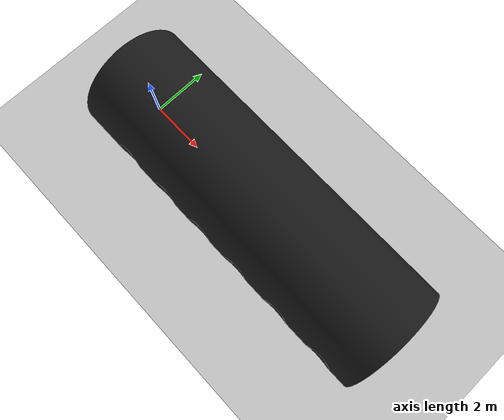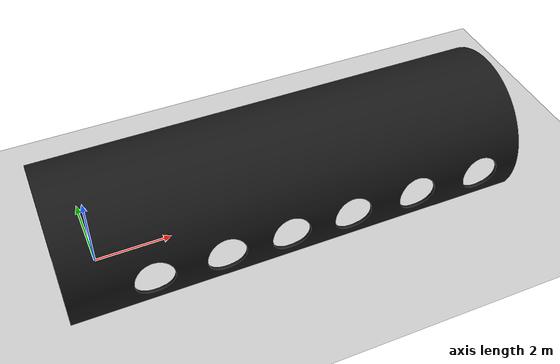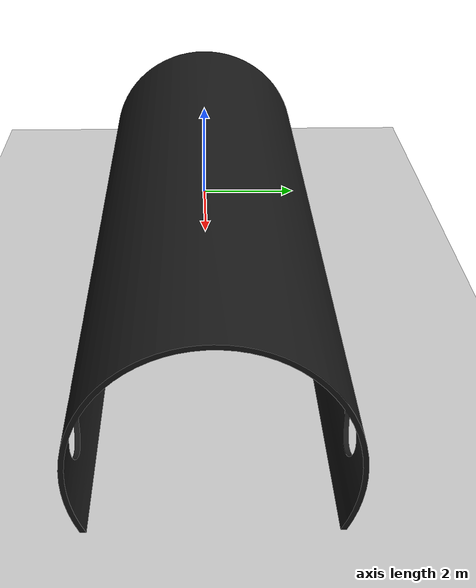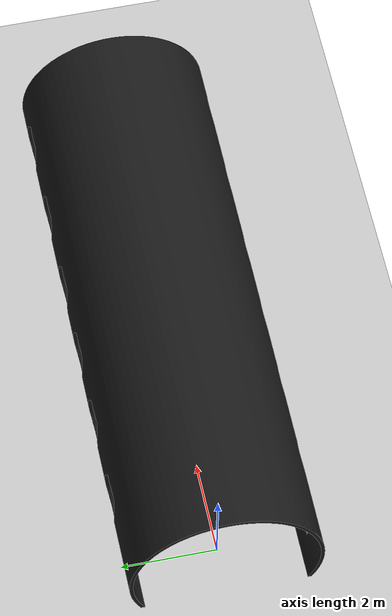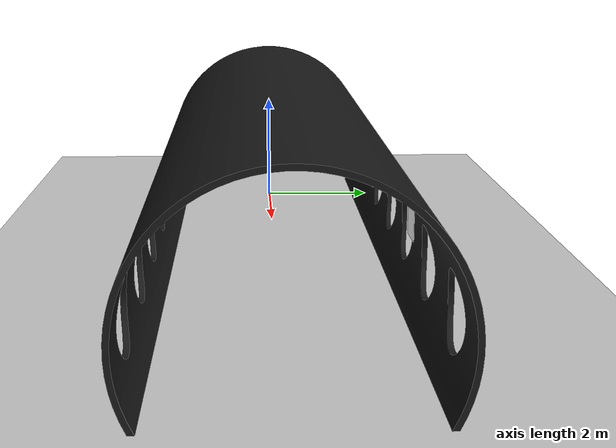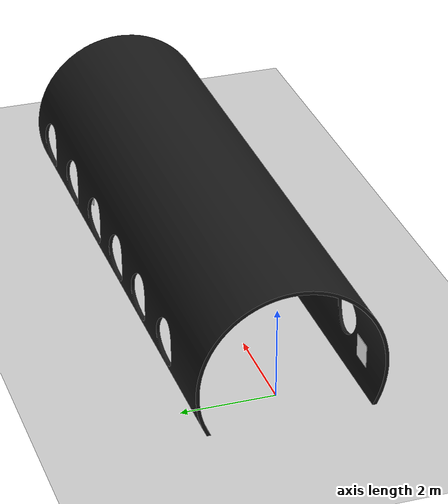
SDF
<?xml version="1.0" ?>

<sdf version="1.6">
  <world name="empty">
    <physics name="1ms" type="ignored">
      <max_step_size>0.001</max_step_size>
      <real_time_factor>1.0</real_time_factor>
    </physics>
    <plugin
      filename="gz-sim-physics-system"
      name="gz::sim::systems::Physics">
    </plugin>
    <plugin
      filename="gz-sim-user-commands-system"
      name="gz::sim::systems::UserCommands">
    </plugin>
    <plugin
      filename="gz-sim-scene-broadcaster-system"
      name="gz::sim::systems::SceneBroadcaster">
    </plugin>
    <plugin
      filename="gz-sim-contact-system"
      name="gz::sim::systems::Contact">
    </plugin>

    <plugin
      filename="gz-sim-sensors-system"
      name="gz::sim::systems::Sensors">
      <render_engine>ogre2</render_engine>
    </plugin>
    <plugin
      filename="gz-sim-imu-system"
      name="gz::sim::systems::Imu">
    </plugin>
    <plugin
      filename="gz-sim-navsat-system"
      name="gz::sim::systems::NavSat">
    </plugin>
    <!-- Set the coordinates for the world origin -->
    <spherical_coordinates>
      <surface_model>EARTH_WGS84</surface_model>
      <world_frame_orientation>ENU</world_frame_orientation>
      <latitude_deg>47.478950</latitude_deg>
      <longitude_deg>19.057785</longitude_deg>
      <elevation>0</elevation>
      <heading_deg>0</heading_deg>
    </spherical_coordinates>

    <light type="directional" name="sun">
      <cast_shadows>false</cast_shadows>
      <pose>0 0 10 0 0 0</pose>
      <diffuse>0.8 0.8 0.8 1</diffuse>
      <specular>0.2 0.2 0.2 1</specular>
      <attenuation>
        <range>1000</range>
        <constant>0.9</constant>
        <linear>0.01</linear>
        <quadratic>0.001</quadratic>
      </attenuation>
      <direction>-0.5 0.1 -0.9</direction>
    </light>

    <gravity>0 0 -9.8000000000000007</gravity>
    <magnetic_field>5.5644999999999998e-06 2.2875799999999999e-05 -4.2388400000000002e-05</magnetic_field>
    <atmosphere type='adiabatic'/>
    <scene>
      <ambient>0.400000006 0.400000006 0.400000006 1</ambient>
      <background>0.699999988 0.699999988 0.699999988 1</background>
      <shadows>true</shadows>
    </scene>

    <model name="ground_plane">
      <static>true</static>
      <link name="link">
        <collision name="collision">
          <geometry>
            <plane>
              <normal>0 0 1</normal>
              <size>100 100</size>
            </plane>
          </geometry>
          <surface>
            <friction>
              <ode>
                <mu>50</mu>
              </ode>
            </friction>
            <bounce/>
            <contact/>
          </surface>
        </collision>
        <visual name="visual">
          <geometry>
            <plane>
              <normal>0 0 1</normal>
              <size>100 100</size>
            </plane>
          </geometry>
          <material>
            <ambient>0.8 0.8 0.8 1</ambient>
            <diffuse>0.8 0.8 0.8 1</diffuse>
            <specular>0.8 0.8 0.8 1</specular>
          </material>
        </visual>
      </link>
    </model>

    <model name="reactor1">
      <static>true</static>   <!-- keep it fixed in the world -->

      <pose>11.0 0 1.0 0 0 1.57</pose>  <!-- change position/orientation here -->

      <link name="link">
        <visual name="visual">
          <geometry>
            <mesh>
              <uri>file://Aircraftbodydesign.stl</uri>
              <scale>0.01 0.01 0.01</scale>
            </mesh>
          </geometry>
            <material>
                <ambient>0.05 0.05 0.05 1</ambient>
                <diffuse>0.1 0.1 0.1 1</diffuse>
                <specular>0.2 0.2 0.2 1</specular>
            </material>
        </visual>

        <collision name="collision">
          <geometry>
            <mesh>
              <uri>file://Aircraftbodydesign.stl</uri>
              <scale>0.01 0.01 0.01</scale>
            </mesh>
          </geometry>
        </collision>
      </link>
    </model>

    <model name="scratch_0">
      <static>true</static>
      <pose>0.0 -1.82 0.70 0 0 1.57</pose>
      <link name="link">
        <visual name="visual">
          <geometry>
            <box>
              <size>0.01 0.5 0.5</size>
            </box>
          </geometry>
          <material>
            <diffuse>1.0 1.0 1.0 1</diffuse>
            <specular>0.0 0.0 0.0 1</specular>
            <pbr>
              <metal>
                <albedo_map>file://scratches/scratch0.png</albedo_map>
                <roughness>1.0</roughness>
                <metalness>0.0</metalness>
              </metal>
            </pbr>
          </material>
        </visual>
      </link>
    </model>

    <model name="scratch_1">
      <static>true</static>
      <pose>2.0 1.90 0.90 0 0 -1.57</pose>
      <link name="link">
        <visual name="visual">
          <geometry>
            <box>
              <size>0.01 0.5 0.5</size>
            </box>
          </geometry>
          <material>
            <diffuse>1.0 1.0 1.0 1</diffuse>
            <specular>0.0 0.0 0.0 1</specular>
            <pbr>
              <metal>
                <albedo_map>file://scratches/scratch1.png</albedo_map>
                <roughness>1.0</roughness>
                <metalness>0.0</metalness>
              </metal>
            </pbr>
          </material>
        </visual>
      </link>
    </model>

    <model name="scratch_2">
      <static>true</static>
      <pose>7.0 1.85 1.3 0 0 -1.57</pose>
      <link name="link">
        <visual name="visual">
          <geometry>
            <box>
              <size>0.01 0.5 0.5</size>
            </box>
          </geometry>
          <material>
            <diffuse>1.0 1.0 1.0 1</diffuse>
            <specular>0.0 0.0 0.0 1</specular>
            <pbr>
              <metal>
                <albedo_map>file://scratches/scratch2.png</albedo_map>
                <roughness>1.0</roughness>
                <metalness>0.0</metalness>
              </metal>
            </pbr>
          </material>
        </visual>
      </link>
    </model>

  </world>
</sdf>
